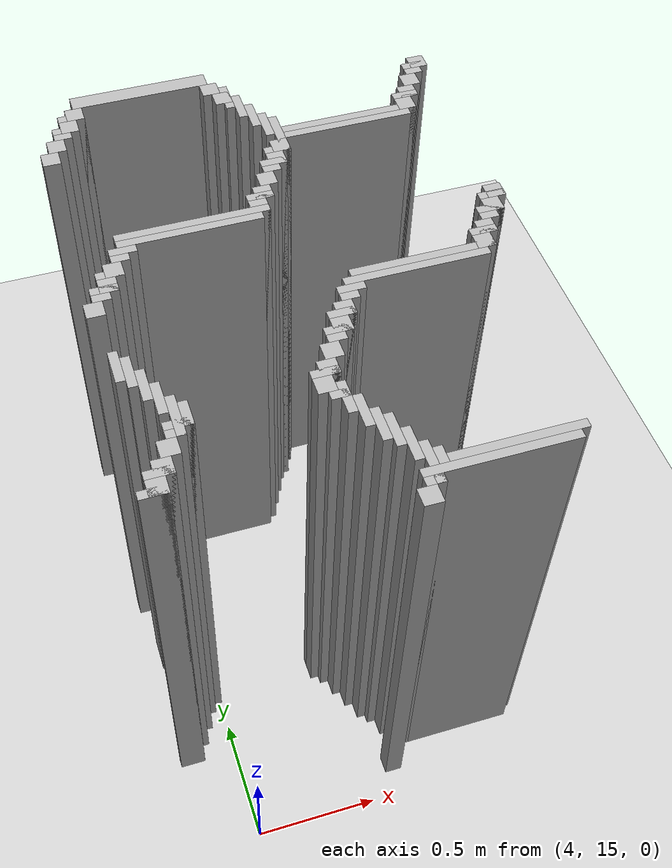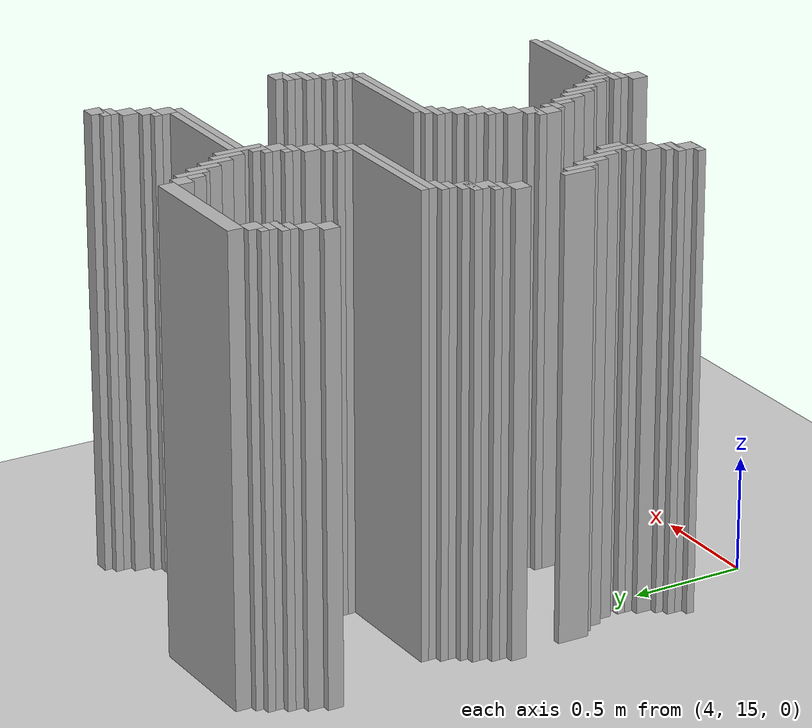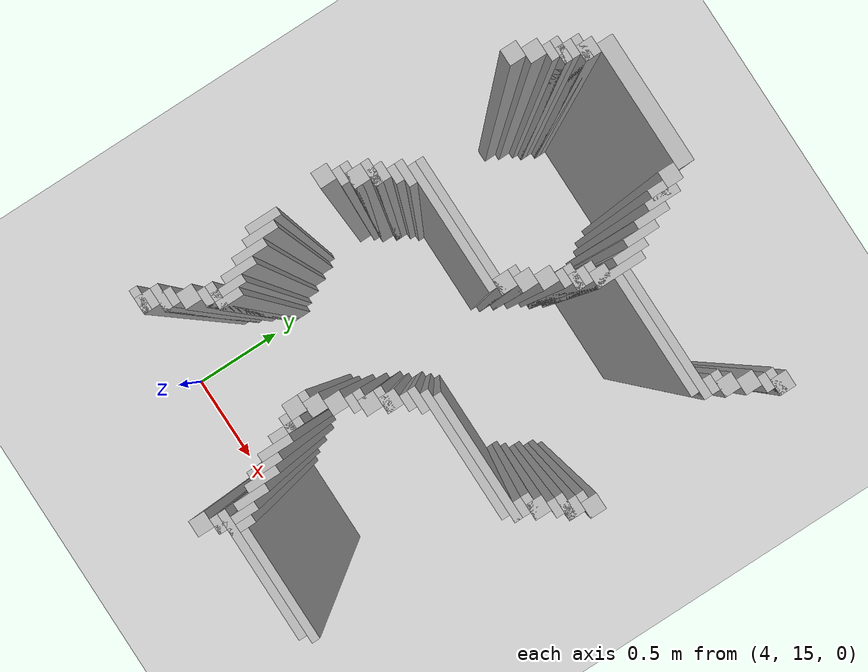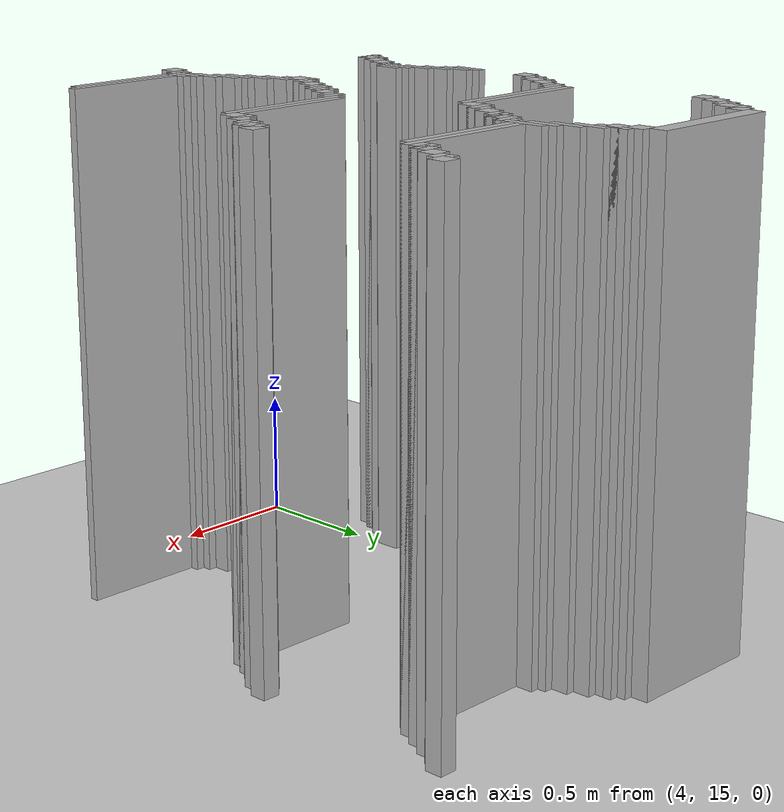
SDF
<sdf version="1.6">
 <world name="slam_world">
  <model name="ground_plane">
   <static>true</static>
   <link name="link">
    <collision name="collision">
     <geometry><plane><normal>0 0 1</normal><size>100 100</size></plane></geometry>
    </collision>
    <visual name="visual">
     <geometry><plane><normal>0 0 1</normal><size>100 100</size></plane></geometry>
     <material>
      <ambient>0.8 0.8 0.8 1</ambient>
      <diffuse>0.8 0.8 0.8 1</diffuse>
      <specular>0.8 0.8 0.8 1</specular>
     </material>
    </visual>
   </link>
  </model>
  <model name="wall_2">
   <static>true</static>
   <pose>4.211136890951276 17.366589327146173 1.0 0 0 0</pose>
   <link name="link">
    <collision name="collision">
     <geometry><box><size>0.5568445475638051 0.06960556844547564 2.0</size></box></geometry>
    </collision>
    <visual name="visual">
     <geometry><box><size>0.5568445475638051 0.06960556844547564 2.0</size></box></geometry>
     <material><ambient>0.5 0.5 0.5 1</ambient><diffuse>0.7 0.7 0.7 1</diffuse></material>
    </visual>
   </link>
  </model>
  <model name="wall_15">
   <static>true</static>
   <pose>3.932714617169373 17.296983758700694 1.0 0 0 0</pose>
   <link name="link">
    <collision name="collision">
     <geometry><box><size>0.06960556844547564 0.06960556844547564 2.0</size></box></geometry>
    </collision>
    <visual name="visual">
     <geometry><box><size>0.06960556844547564 0.06960556844547564 2.0</size></box></geometry>
     <material><ambient>0.5 0.5 0.5 1</ambient><diffuse>0.7 0.7 0.7 1</diffuse></material>
    </visual>
   </link>
  </model>
  <model name="wall_16">
   <static>true</static>
   <pose>4.489559164733178 17.296983758700694 1.0 0 0 0</pose>
   <link name="link">
    <collision name="collision">
     <geometry><box><size>0.06960556844547564 0.06960556844547564 2.0</size></box></geometry>
    </collision>
    <visual name="visual">
     <geometry><box><size>0.06960556844547564 0.06960556844547564 2.0</size></box></geometry>
     <material><ambient>0.5 0.5 0.5 1</ambient><diffuse>0.7 0.7 0.7 1</diffuse></material>
    </visual>
   </link>
  </model>
  <model name="wall_35">
   <static>true</static>
   <pose>3.9153132250580045 17.279582366589327 1.0 0 0 0</pose>
   <link name="link">
    <collision name="collision">
     <geometry><box><size>0.10440835266821345 0.03480278422273782 2.0</size></box></geometry>
    </collision>
    <visual name="visual">
     <geometry><box><size>0.10440835266821345 0.03480278422273782 2.0</size></box></geometry>
     <material><ambient>0.5 0.5 0.5 1</ambient><diffuse>0.7 0.7 0.7 1</diffuse></material>
    </visual>
   </link>
  </model>
  <model name="wall_36">
   <static>true</static>
   <pose>4.541763341067285 17.22737819025522 1.0 0 0 0</pose>
   <link name="link">
    <collision name="collision">
     <geometry><box><size>0.03480278422273782 0.13921113689095127 2.0</size></box></geometry>
    </collision>
    <visual name="visual">
     <geometry><box><size>0.03480278422273782 0.13921113689095127 2.0</size></box></geometry>
     <material><ambient>0.5 0.5 0.5 1</ambient><diffuse>0.7 0.7 0.7 1</diffuse></material>
    </visual>
   </link>
  </model>
  <model name="wall_55">
   <static>true</static>
   <pose>3.897911832946636 17.22737819025522 1.0 0 0 0</pose>
   <link name="link">
    <collision name="collision">
     <geometry><box><size>0.06960556844547564 0.06960556844547564 2.0</size></box></geometry>
    </collision>
    <visual name="visual">
     <geometry><box><size>0.06960556844547564 0.06960556844547564 2.0</size></box></geometry>
     <material><ambient>0.5 0.5 0.5 1</ambient><diffuse>0.7 0.7 0.7 1</diffuse></material>
    </visual>
   </link>
  </model>
  <model name="wall_56">
   <static>true</static>
   <pose>4.524361948955916 17.22737819025522 1.0 0 0 0</pose>
   <link name="link">
    <collision name="collision">
     <geometry><box><size>0.06960556844547564 0.06960556844547564 2.0</size></box></geometry>
    </collision>
    <visual name="visual">
     <geometry><box><size>0.06960556844547564 0.06960556844547564 2.0</size></box></geometry>
     <material><ambient>0.5 0.5 0.5 1</ambient><diffuse>0.7 0.7 0.7 1</diffuse></material>
    </visual>
   </link>
  </model>
  <model name="wall_57">
   <static>true</static>
   <pose>5.359628770301624 17.22737819025522 1.0 0 0 0</pose>
   <link name="link">
    <collision name="collision">
     <geometry><box><size>0.06960556844547564 0.06960556844547564 2.0</size></box></geometry>
    </collision>
    <visual name="visual">
     <geometry><box><size>0.06960556844547564 0.06960556844547564 2.0</size></box></geometry>
     <material><ambient>0.5 0.5 0.5 1</ambient><diffuse>0.7 0.7 0.7 1</diffuse></material>
    </visual>
   </link>
  </model>
  <model name="wall_75">
   <static>true</static>
   <pose>3.8805104408352666 17.209976798143853 1.0 0 0 0</pose>
   <link name="link">
    <collision name="collision">
     <geometry><box><size>0.10440835266821345 0.03480278422273782 2.0</size></box></geometry>
    </collision>
    <visual name="visual">
     <geometry><box><size>0.10440835266821345 0.03480278422273782 2.0</size></box></geometry>
     <material><ambient>0.5 0.5 0.5 1</ambient><diffuse>0.7 0.7 0.7 1</diffuse></material>
    </visual>
   </link>
  </model>
  <model name="wall_76">
   <static>true</static>
   <pose>4.576566125290023 17.157772621809745 1.0 0 0 0</pose>
   <link name="link">
    <collision name="collision">
     <geometry><box><size>0.03480278422273782 0.13921113689095127 2.0</size></box></geometry>
    </collision>
    <visual name="visual">
     <geometry><box><size>0.03480278422273782 0.13921113689095127 2.0</size></box></geometry>
     <material><ambient>0.5 0.5 0.5 1</ambient><diffuse>0.7 0.7 0.7 1</diffuse></material>
    </visual>
   </link>
  </model>
  <model name="wall_77">
   <static>true</static>
   <pose>5.342227378190255 17.209976798143853 1.0 0 0 0</pose>
   <link name="link">
    <collision name="collision">
     <geometry><box><size>0.10440835266821345 0.03480278422273782 2.0</size></box></geometry>
    </collision>
    <visual name="visual">
     <geometry><box><size>0.10440835266821345 0.03480278422273782 2.0</size></box></geometry>
     <material><ambient>0.5 0.5 0.5 1</ambient><diffuse>0.7 0.7 0.7 1</diffuse></material>
    </visual>
   </link>
  </model>
  <model name="wall_93">
   <static>true</static>
   <pose>3.863109048723898 17.17517401392111 1.0 0 0 0</pose>
   <link name="link">
    <collision name="collision">
     <geometry><box><size>0.06960556844547564 0.03480278422273782 2.0</size></box></geometry>
    </collision>
    <visual name="visual">
     <geometry><box><size>0.06960556844547564 0.03480278422273782 2.0</size></box></geometry>
     <material><ambient>0.5 0.5 0.5 1</ambient><diffuse>0.7 0.7 0.7 1</diffuse></material>
    </visual>
   </link>
  </model>
  <model name="wall_94">
   <static>true</static>
   <pose>5.324825986078886 17.17517401392111 1.0 0 0 0</pose>
   <link name="link">
    <collision name="collision">
     <geometry><box><size>0.06960556844547564 0.03480278422273782 2.0</size></box></geometry>
    </collision>
    <visual name="visual">
     <geometry><box><size>0.06960556844547564 0.03480278422273782 2.0</size></box></geometry>
     <material><ambient>0.5 0.5 0.5 1</ambient><diffuse>0.7 0.7 0.7 1</diffuse></material>
    </visual>
   </link>
  </model>
  <model name="wall_105">
   <static>true</static>
   <pose>3.82830626450116 17.122969837587007 1.0 0 0 0</pose>
   <link name="link">
    <collision name="collision">
     <geometry><box><size>0.06960556844547564 0.06960556844547564 2.0</size></box></geometry>
    </collision>
    <visual name="visual">
     <geometry><box><size>0.06960556844547564 0.06960556844547564 2.0</size></box></geometry>
     <material><ambient>0.5 0.5 0.5 1</ambient><diffuse>0.7 0.7 0.7 1</diffuse></material>
    </visual>
   </link>
  </model>
  <model name="wall_106">
   <static>true</static>
   <pose>4.611368909512761 17.08816705336427 1.0 0 0 0</pose>
   <link name="link">
    <collision name="collision">
     <geometry><box><size>0.03480278422273782 0.13921113689095127 2.0</size></box></geometry>
    </collision>
    <visual name="visual">
     <geometry><box><size>0.03480278422273782 0.13921113689095127 2.0</size></box></geometry>
     <material><ambient>0.5 0.5 0.5 1</ambient><diffuse>0.7 0.7 0.7 1</diffuse></material>
    </visual>
   </link>
  </model>
  <model name="wall_107">
   <static>true</static>
   <pose>5.290023201856148 17.122969837587007 1.0 0 0 0</pose>
   <link name="link">
    <collision name="collision">
     <geometry><box><size>0.06960556844547564 0.06960556844547564 2.0</size></box></geometry>
    </collision>
    <visual name="visual">
     <geometry><box><size>0.06960556844547564 0.06960556844547564 2.0</size></box></geometry>
     <material><ambient>0.5 0.5 0.5 1</ambient><diffuse>0.7 0.7 0.7 1</diffuse></material>
    </visual>
   </link>
  </model>
  <model name="wall_125">
   <static>true</static>
   <pose>3.793503480278422 17.053364269141532 1.0 0 0 0</pose>
   <link name="link">
    <collision name="collision">
     <geometry><box><size>0.06960556844547564 0.06960556844547564 2.0</size></box></geometry>
    </collision>
    <visual name="visual">
     <geometry><box><size>0.06960556844547564 0.06960556844547564 2.0</size></box></geometry>
     <material><ambient>0.5 0.5 0.5 1</ambient><diffuse>0.7 0.7 0.7 1</diffuse></material>
    </visual>
   </link>
  </model>
  <model name="wall_126">
   <static>true</static>
   <pose>4.646171693735498 17.01856148491879 1.0 0 0 0</pose>
   <link name="link">
    <collision name="collision">
     <geometry><box><size>0.03480278422273782 0.13921113689095127 2.0</size></box></geometry>
    </collision>
    <visual name="visual">
     <geometry><box><size>0.03480278422273782 0.13921113689095127 2.0</size></box></geometry>
     <material><ambient>0.5 0.5 0.5 1</ambient><diffuse>0.7 0.7 0.7 1</diffuse></material>
    </visual>
   </link>
  </model>
  <model name="wall_127">
   <static>true</static>
   <pose>5.25522041763341 17.053364269141532 1.0 0 0 0</pose>
   <link name="link">
    <collision name="collision">
     <geometry><box><size>0.06960556844547564 0.06960556844547564 2.0</size></box></geometry>
    </collision>
    <visual name="visual">
     <geometry><box><size>0.06960556844547564 0.06960556844547564 2.0</size></box></geometry>
     <material><ambient>0.5 0.5 0.5 1</ambient><diffuse>0.7 0.7 0.7 1</diffuse></material>
    </visual>
   </link>
  </model>
  <model name="wall_146">
   <static>true</static>
   <pose>4.6809744779582365 16.948955916473317 1.0 0 0 0</pose>
   <link name="link">
    <collision name="collision">
     <geometry><box><size>0.03480278422273782 0.2088167053364269 2.0</size></box></geometry>
    </collision>
    <visual name="visual">
     <geometry><box><size>0.03480278422273782 0.2088167053364269 2.0</size></box></geometry>
     <material><ambient>0.5 0.5 0.5 1</ambient><diffuse>0.7 0.7 0.7 1</diffuse></material>
    </visual>
   </link>
  </model>
  <model name="wall_147">
   <static>true</static>
   <pose>5.237819025522041 17.035962877030162 1.0 0 0 0</pose>
   <link name="link">
    <collision name="collision">
     <geometry><box><size>0.10440835266821345 0.03480278422273782 2.0</size></box></geometry>
    </collision>
    <visual name="visual">
     <geometry><box><size>0.10440835266821345 0.03480278422273782 2.0</size></box></geometry>
     <material><ambient>0.5 0.5 0.5 1</ambient><diffuse>0.7 0.7 0.7 1</diffuse></material>
    </visual>
   </link>
  </model>
  <model name="wall_164">
   <static>true</static>
   <pose>5.220417633410673 16.983758700696054 1.0 0 0 0</pose>
   <link name="link">
    <collision name="collision">
     <geometry><box><size>0.06960556844547564 0.06960556844547564 2.0</size></box></geometry>
    </collision>
    <visual name="visual">
     <geometry><box><size>0.06960556844547564 0.06960556844547564 2.0</size></box></geometry>
     <material><ambient>0.5 0.5 0.5 1</ambient><diffuse>0.7 0.7 0.7 1</diffuse></material>
    </visual>
   </link>
  </model>
  <model name="wall_174">
   <static>true</static>
   <pose>4.976798143851508 16.966357308584687 1.0 0 0 0</pose>
   <link name="link">
    <collision name="collision">
     <geometry><box><size>0.5568445475638051 0.03480278422273782 2.0</size></box></geometry>
    </collision>
    <visual name="visual">
     <geometry><box><size>0.5568445475638051 0.03480278422273782 2.0</size></box></geometry>
     <material><ambient>0.5 0.5 0.5 1</ambient><diffuse>0.7 0.7 0.7 1</diffuse></material>
    </visual>
   </link>
  </model>
  <model name="wall_185">
   <static>true</static>
   <pose>4.959396751740139 16.93155452436195 1.0 0 0 0</pose>
   <link name="link">
    <collision name="collision">
     <geometry><box><size>0.5220417633410672 0.03480278422273782 2.0</size></box></geometry>
    </collision>
    <visual name="visual">
     <geometry><box><size>0.5220417633410672 0.03480278422273782 2.0</size></box></geometry>
     <material><ambient>0.5 0.5 0.5 1</ambient><diffuse>0.7 0.7 0.7 1</diffuse></material>
    </visual>
   </link>
  </model>
  <model name="wall_195">
   <static>true</static>
   <pose>4.663573085846868 16.87935034802784 1.0 0 0 0</pose>
   <link name="link">
    <collision name="collision">
     <geometry><box><size>0.06960556844547564 0.06960556844547564 2.0</size></box></geometry>
    </collision>
    <visual name="visual">
     <geometry><box><size>0.06960556844547564 0.06960556844547564 2.0</size></box></geometry>
     <material><ambient>0.5 0.5 0.5 1</ambient><diffuse>0.7 0.7 0.7 1</diffuse></material>
    </visual>
   </link>
  </model>
  <model name="wall_204">
   <static>true</static>
   <pose>4.646171693735498 16.86194895591647 1.0 0 0 0</pose>
   <link name="link">
    <collision name="collision">
     <geometry><box><size>0.10440835266821345 0.03480278422273782 2.0</size></box></geometry>
    </collision>
    <visual name="visual">
     <geometry><box><size>0.10440835266821345 0.03480278422273782 2.0</size></box></geometry>
     <material><ambient>0.5 0.5 0.5 1</ambient><diffuse>0.7 0.7 0.7 1</diffuse></material>
    </visual>
   </link>
  </model>
  <model name="wall_213">
   <static>true</static>
   <pose>4.6287703016241295 16.809744779582367 1.0 0 0 0</pose>
   <link name="link">
    <collision name="collision">
     <geometry><box><size>0.06960556844547564 0.06960556844547564 2.0</size></box></geometry>
    </collision>
    <visual name="visual">
     <geometry><box><size>0.06960556844547564 0.06960556844547564 2.0</size></box></geometry>
     <material><ambient>0.5 0.5 0.5 1</ambient><diffuse>0.7 0.7 0.7 1</diffuse></material>
    </visual>
   </link>
  </model>
  <model name="wall_222">
   <static>true</static>
   <pose>4.611368909512761 16.792343387470996 1.0 0 0 0</pose>
   <link name="link">
    <collision name="collision">
     <geometry><box><size>0.10440835266821345 0.03480278422273782 2.0</size></box></geometry>
    </collision>
    <visual name="visual">
     <geometry><box><size>0.10440835266821345 0.03480278422273782 2.0</size></box></geometry>
     <material><ambient>0.5 0.5 0.5 1</ambient><diffuse>0.7 0.7 0.7 1</diffuse></material>
    </visual>
   </link>
  </model>
  <model name="wall_230">
   <static>true</static>
   <pose>4.593967517401392 16.75754060324826 1.0 0 0 0</pose>
   <link name="link">
    <collision name="collision">
     <geometry><box><size>0.06960556844547564 0.03480278422273782 2.0</size></box></geometry>
    </collision>
    <visual name="visual">
     <geometry><box><size>0.06960556844547564 0.03480278422273782 2.0</size></box></geometry>
     <material><ambient>0.5 0.5 0.5 1</ambient><diffuse>0.7 0.7 0.7 1</diffuse></material>
    </visual>
   </link>
  </model>
  <model name="wall_235">
   <static>true</static>
   <pose>4.559164733178654 16.70533642691415 1.0 0 0 0</pose>
   <link name="link">
    <collision name="collision">
     <geometry><box><size>0.06960556844547564 0.06960556844547564 2.0</size></box></geometry>
    </collision>
    <visual name="visual">
     <geometry><box><size>0.06960556844547564 0.06960556844547564 2.0</size></box></geometry>
     <material><ambient>0.5 0.5 0.5 1</ambient><diffuse>0.7 0.7 0.7 1</diffuse></material>
    </visual>
   </link>
  </model>
  <model name="wall_244">
   <static>true</static>
   <pose>4.524361948955916 16.635730858468676 1.0 0 0 0</pose>
   <link name="link">
    <collision name="collision">
     <geometry><box><size>0.06960556844547564 0.06960556844547564 2.0</size></box></geometry>
    </collision>
    <visual name="visual">
     <geometry><box><size>0.06960556844547564 0.06960556844547564 2.0</size></box></geometry>
     <material><ambient>0.5 0.5 0.5 1</ambient><diffuse>0.7 0.7 0.7 1</diffuse></material>
    </visual>
   </link>
  </model>
  <model name="wall_253">
   <static>true</static>
   <pose>4.506960556844548 16.61832946635731 1.0 0 0 0</pose>
   <link name="link">
    <collision name="collision">
     <geometry><box><size>0.10440835266821345 0.03480278422273782 2.0</size></box></geometry>
    </collision>
    <visual name="visual">
     <geometry><box><size>0.10440835266821345 0.03480278422273782 2.0</size></box></geometry>
     <material><ambient>0.5 0.5 0.5 1</ambient><diffuse>0.7 0.7 0.7 1</diffuse></material>
    </visual>
   </link>
  </model>
  <model name="wall_261">
   <static>true</static>
   <pose>4.489559164733178 16.5661252900232 1.0 0 0 0</pose>
   <link name="link">
    <collision name="collision">
     <geometry><box><size>0.06960556844547564 0.06960556844547564 2.0</size></box></geometry>
    </collision>
    <visual name="visual">
     <geometry><box><size>0.06960556844547564 0.06960556844547564 2.0</size></box></geometry>
     <material><ambient>0.5 0.5 0.5 1</ambient><diffuse>0.7 0.7 0.7 1</diffuse></material>
    </visual>
   </link>
  </model>
  <model name="wall_267">
   <static>true</static>
   <pose>4.228538283062645 16.54872389791183 1.0 0 0 0</pose>
   <link name="link">
    <collision name="collision">
     <geometry><box><size>0.5916473317865429 0.03480278422273782 2.0</size></box></geometry>
    </collision>
    <visual name="visual">
     <geometry><box><size>0.5916473317865429 0.03480278422273782 2.0</size></box></geometry>
     <material><ambient>0.5 0.5 0.5 1</ambient><diffuse>0.7 0.7 0.7 1</diffuse></material>
    </visual>
   </link>
  </model>
  <model name="wall_278">
   <static>true</static>
   <pose>4.211136890951276 16.513921113689094 1.0 0 0 0</pose>
   <link name="link">
    <collision name="collision">
     <geometry><box><size>0.5568445475638051 0.03480278422273782 2.0</size></box></geometry>
    </collision>
    <visual name="visual">
     <geometry><box><size>0.5568445475638051 0.03480278422273782 2.0</size></box></geometry>
     <material><ambient>0.5 0.5 0.5 1</ambient><diffuse>0.7 0.7 0.7 1</diffuse></material>
    </visual>
   </link>
  </model>
  <model name="wall_284">
   <static>true</static>
   <pose>3.9501160092807424 16.479118329466356 1.0 0 0 0</pose>
   <link name="link">
    <collision name="collision">
     <geometry><box><size>0.10440835266821345 0.03480278422273782 2.0</size></box></geometry>
    </collision>
    <visual name="visual">
     <geometry><box><size>0.10440835266821345 0.03480278422273782 2.0</size></box></geometry>
     <material><ambient>0.5 0.5 0.5 1</ambient><diffuse>0.7 0.7 0.7 1</diffuse></material>
    </visual>
   </link>
  </model>
  <model name="wall_295">
   <static>true</static>
   <pose>3.932714617169373 16.44431554524362 1.0 0 0 0</pose>
   <link name="link">
    <collision name="collision">
     <geometry><box><size>0.06960556844547564 0.03480278422273782 2.0</size></box></geometry>
    </collision>
    <visual name="visual">
     <geometry><box><size>0.06960556844547564 0.03480278422273782 2.0</size></box></geometry>
     <material><ambient>0.5 0.5 0.5 1</ambient><diffuse>0.7 0.7 0.7 1</diffuse></material>
    </visual>
   </link>
  </model>
  <model name="wall_307">
   <static>true</static>
   <pose>3.897911832946636 16.39211136890951 1.0 0 0 0</pose>
   <link name="link">
    <collision name="collision">
     <geometry><box><size>0.06960556844547564 0.06960556844547564 2.0</size></box></geometry>
    </collision>
    <visual name="visual">
     <geometry><box><size>0.06960556844547564 0.06960556844547564 2.0</size></box></geometry>
     <material><ambient>0.5 0.5 0.5 1</ambient><diffuse>0.7 0.7 0.7 1</diffuse></material>
    </visual>
   </link>
  </model>
  <model name="wall_308">
   <static>true</static>
   <pose>5.359628770301624 16.39211136890951 1.0 0 0 0</pose>
   <link name="link">
    <collision name="collision">
     <geometry><box><size>0.06960556844547564 0.06960556844547564 2.0</size></box></geometry>
    </collision>
    <visual name="visual">
     <geometry><box><size>0.06960556844547564 0.06960556844547564 2.0</size></box></geometry>
     <material><ambient>0.5 0.5 0.5 1</ambient><diffuse>0.7 0.7 0.7 1</diffuse></material>
    </visual>
   </link>
  </model>
  <model name="wall_321">
   <static>true</static>
   <pose>3.8805104408352666 16.374709976798144 1.0 0 0 0</pose>
   <link name="link">
    <collision name="collision">
     <geometry><box><size>0.10440835266821345 0.03480278422273782 2.0</size></box></geometry>
    </collision>
    <visual name="visual">
     <geometry><box><size>0.10440835266821345 0.03480278422273782 2.0</size></box></geometry>
     <material><ambient>0.5 0.5 0.5 1</ambient><diffuse>0.7 0.7 0.7 1</diffuse></material>
    </visual>
   </link>
  </model>
  <model name="wall_322">
   <static>true</static>
   <pose>5.342227378190255 16.374709976798144 1.0 0 0 0</pose>
   <link name="link">
    <collision name="collision">
     <geometry><box><size>0.10440835266821345 0.03480278422273782 2.0</size></box></geometry>
    </collision>
    <visual name="visual">
     <geometry><box><size>0.10440835266821345 0.03480278422273782 2.0</size></box></geometry>
     <material><ambient>0.5 0.5 0.5 1</ambient><diffuse>0.7 0.7 0.7 1</diffuse></material>
    </visual>
   </link>
  </model>
  <model name="wall_335">
   <static>true</static>
   <pose>3.863109048723898 16.322505800464036 1.0 0 0 0</pose>
   <link name="link">
    <collision name="collision">
     <geometry><box><size>0.06960556844547564 0.06960556844547564 2.0</size></box></geometry>
    </collision>
    <visual name="visual">
     <geometry><box><size>0.06960556844547564 0.06960556844547564 2.0</size></box></geometry>
     <material><ambient>0.5 0.5 0.5 1</ambient><diffuse>0.7 0.7 0.7 1</diffuse></material>
    </visual>
   </link>
  </model>
  <model name="wall_336">
   <static>true</static>
   <pose>5.324825986078886 16.322505800464036 1.0 0 0 0</pose>
   <link name="link">
    <collision name="collision">
     <geometry><box><size>0.06960556844547564 0.06960556844547564 2.0</size></box></geometry>
    </collision>
    <visual name="visual">
     <geometry><box><size>0.06960556844547564 0.06960556844547564 2.0</size></box></geometry>
     <material><ambient>0.5 0.5 0.5 1</ambient><diffuse>0.7 0.7 0.7 1</diffuse></material>
    </visual>
   </link>
  </model>
  <model name="wall_349">
   <static>true</static>
   <pose>3.845707656612529 16.30510440835267 1.0 0 0 0</pose>
   <link name="link">
    <collision name="collision">
     <geometry><box><size>0.10440835266821345 0.03480278422273782 2.0</size></box></geometry>
    </collision>
    <visual name="visual">
     <geometry><box><size>0.10440835266821345 0.03480278422273782 2.0</size></box></geometry>
     <material><ambient>0.5 0.5 0.5 1</ambient><diffuse>0.7 0.7 0.7 1</diffuse></material>
    </visual>
   </link>
  </model>
  <model name="wall_350">
   <static>true</static>
   <pose>5.307424593967517 16.30510440835267 1.0 0 0 0</pose>
   <link name="link">
    <collision name="collision">
     <geometry><box><size>0.10440835266821345 0.03480278422273782 2.0</size></box></geometry>
    </collision>
    <visual name="visual">
     <geometry><box><size>0.10440835266821345 0.03480278422273782 2.0</size></box></geometry>
     <material><ambient>0.5 0.5 0.5 1</ambient><diffuse>0.7 0.7 0.7 1</diffuse></material>
    </visual>
   </link>
  </model>
  <model name="wall_361">
   <static>true</static>
   <pose>3.82830626450116 16.270301624129928 1.0 0 0 0</pose>
   <link name="link">
    <collision name="collision">
     <geometry><box><size>0.06960556844547564 0.03480278422273782 2.0</size></box></geometry>
    </collision>
    <visual name="visual">
     <geometry><box><size>0.06960556844547564 0.03480278422273782 2.0</size></box></geometry>
     <material><ambient>0.5 0.5 0.5 1</ambient><diffuse>0.7 0.7 0.7 1</diffuse></material>
    </visual>
   </link>
  </model>
  <model name="wall_362">
   <static>true</static>
   <pose>5.290023201856148 16.270301624129928 1.0 0 0 0</pose>
   <link name="link">
    <collision name="collision">
     <geometry><box><size>0.06960556844547564 0.03480278422273782 2.0</size></box></geometry>
    </collision>
    <visual name="visual">
     <geometry><box><size>0.06960556844547564 0.03480278422273782 2.0</size></box></geometry>
     <material><ambient>0.5 0.5 0.5 1</ambient><diffuse>0.7 0.7 0.7 1</diffuse></material>
    </visual>
   </link>
  </model>
  <model name="wall_371">
   <static>true</static>
   <pose>3.793503480278422 16.218097447795824 1.0 0 0 0</pose>
   <link name="link">
    <collision name="collision">
     <geometry><box><size>0.06960556844547564 0.06960556844547564 2.0</size></box></geometry>
    </collision>
    <visual name="visual">
     <geometry><box><size>0.06960556844547564 0.06960556844547564 2.0</size></box></geometry>
     <material><ambient>0.5 0.5 0.5 1</ambient><diffuse>0.7 0.7 0.7 1</diffuse></material>
    </visual>
   </link>
  </model>
  <model name="wall_372">
   <static>true</static>
   <pose>5.25522041763341 16.218097447795824 1.0 0 0 0</pose>
   <link name="link">
    <collision name="collision">
     <geometry><box><size>0.06960556844547564 0.06960556844547564 2.0</size></box></geometry>
    </collision>
    <visual name="visual">
     <geometry><box><size>0.06960556844547564 0.06960556844547564 2.0</size></box></geometry>
     <material><ambient>0.5 0.5 0.5 1</ambient><diffuse>0.7 0.7 0.7 1</diffuse></material>
    </visual>
   </link>
  </model>
  <model name="wall_384">
   <static>true</static>
   <pose>5.237819025522041 16.200696055684453 1.0 0 0 0</pose>
   <link name="link">
    <collision name="collision">
     <geometry><box><size>0.10440835266821345 0.03480278422273782 2.0</size></box></geometry>
    </collision>
    <visual name="visual">
     <geometry><box><size>0.10440835266821345 0.03480278422273782 2.0</size></box></geometry>
     <material><ambient>0.5 0.5 0.5 1</ambient><diffuse>0.7 0.7 0.7 1</diffuse></material>
    </visual>
   </link>
  </model>
  <model name="wall_394">
   <static>true</static>
   <pose>5.220417633410673 16.14849187935035 1.0 0 0 0</pose>
   <link name="link">
    <collision name="collision">
     <geometry><box><size>0.06960556844547564 0.06960556844547564 2.0</size></box></geometry>
    </collision>
    <visual name="visual">
     <geometry><box><size>0.06960556844547564 0.06960556844547564 2.0</size></box></geometry>
     <material><ambient>0.5 0.5 0.5 1</ambient><diffuse>0.7 0.7 0.7 1</diffuse></material>
    </visual>
   </link>
  </model>
  <model name="wall_408">
   <static>true</static>
   <pose>4.976798143851508 16.13109048723898 1.0 0 0 0</pose>
   <link name="link">
    <collision name="collision">
     <geometry><box><size>0.5568445475638051 0.03480278422273782 2.0</size></box></geometry>
    </collision>
    <visual name="visual">
     <geometry><box><size>0.5568445475638051 0.03480278422273782 2.0</size></box></geometry>
     <material><ambient>0.5 0.5 0.5 1</ambient><diffuse>0.7 0.7 0.7 1</diffuse></material>
    </visual>
   </link>
  </model>
  <model name="wall_420">
   <static>true</static>
   <pose>4.94199535962877 16.09628770301624 1.0 0 0 0</pose>
   <link name="link">
    <collision name="collision">
     <geometry><box><size>0.5568445475638051 0.03480278422273782 2.0</size></box></geometry>
    </collision>
    <visual name="visual">
     <geometry><box><size>0.5568445475638051 0.03480278422273782 2.0</size></box></geometry>
     <material><ambient>0.5 0.5 0.5 1</ambient><diffuse>0.7 0.7 0.7 1</diffuse></material>
    </visual>
   </link>
  </model>
  <model name="wall_433">
   <static>true</static>
   <pose>4.6809744779582365 16.061484918793504 1.0 0 0 0</pose>
   <link name="link">
    <collision name="collision">
     <geometry><box><size>0.10440835266821345 0.03480278422273782 2.0</size></box></geometry>
    </collision>
    <visual name="visual">
     <geometry><box><size>0.10440835266821345 0.03480278422273782 2.0</size></box></geometry>
     <material><ambient>0.5 0.5 0.5 1</ambient><diffuse>0.7 0.7 0.7 1</diffuse></material>
    </visual>
   </link>
  </model>
  <model name="wall_447">
   <static>true</static>
   <pose>4.663573085846868 16.026682134570766 1.0 0 0 0</pose>
   <link name="link">
    <collision name="collision">
     <geometry><box><size>0.06960556844547564 0.03480278422273782 2.0</size></box></geometry>
    </collision>
    <visual name="visual">
     <geometry><box><size>0.06960556844547564 0.03480278422273782 2.0</size></box></geometry>
     <material><ambient>0.5 0.5 0.5 1</ambient><diffuse>0.7 0.7 0.7 1</diffuse></material>
    </visual>
   </link>
  </model>
  <model name="wall_460">
   <static>true</static>
   <pose>3.810904872389791 15.93967517401392 1.0 0 0 0</pose>
   <link name="link">
    <collision name="collision">
     <geometry><box><size>0.03480278422273782 0.13921113689095127 2.0</size></box></geometry>
    </collision>
    <visual name="visual">
     <geometry><box><size>0.03480278422273782 0.13921113689095127 2.0</size></box></geometry>
     <material><ambient>0.5 0.5 0.5 1</ambient><diffuse>0.7 0.7 0.7 1</diffuse></material>
    </visual>
   </link>
  </model>
  <model name="wall_461">
   <static>true</static>
   <pose>4.6287703016241295 15.974477958236658 1.0 0 0 0</pose>
   <link name="link">
    <collision name="collision">
     <geometry><box><size>0.06960556844547564 0.06960556844547564 2.0</size></box></geometry>
    </collision>
    <visual name="visual">
     <geometry><box><size>0.06960556844547564 0.06960556844547564 2.0</size></box></geometry>
     <material><ambient>0.5 0.5 0.5 1</ambient><diffuse>0.7 0.7 0.7 1</diffuse></material>
    </visual>
   </link>
  </model>
  <model name="wall_474">
   <static>true</static>
   <pose>3.845707656612529 15.904872389791183 1.0 0 0 0</pose>
   <link name="link">
    <collision name="collision">
     <geometry><box><size>0.03480278422273782 0.13921113689095127 2.0</size></box></geometry>
    </collision>
    <visual name="visual">
     <geometry><box><size>0.03480278422273782 0.13921113689095127 2.0</size></box></geometry>
     <material><ambient>0.5 0.5 0.5 1</ambient><diffuse>0.7 0.7 0.7 1</diffuse></material>
    </visual>
   </link>
  </model>
  <model name="wall_475">
   <static>true</static>
   <pose>4.611368909512761 15.95707656612529 1.0 0 0 0</pose>
   <link name="link">
    <collision name="collision">
     <geometry><box><size>0.10440835266821345 0.03480278422273782 2.0</size></box></geometry>
    </collision>
    <visual name="visual">
     <geometry><box><size>0.10440835266821345 0.03480278422273782 2.0</size></box></geometry>
     <material><ambient>0.5 0.5 0.5 1</ambient><diffuse>0.7 0.7 0.7 1</diffuse></material>
    </visual>
   </link>
  </model>
  <model name="wall_487">
   <static>true</static>
   <pose>4.593967517401392 15.904872389791183 1.0 0 0 0</pose>
   <link name="link">
    <collision name="collision">
     <geometry><box><size>0.06960556844547564 0.06960556844547564 2.0</size></box></geometry>
    </collision>
    <visual name="visual">
     <geometry><box><size>0.06960556844547564 0.06960556844547564 2.0</size></box></geometry>
     <material><ambient>0.5 0.5 0.5 1</ambient><diffuse>0.7 0.7 0.7 1</diffuse></material>
    </visual>
   </link>
  </model>
  <model name="wall_498">
   <static>true</static>
   <pose>3.8805104408352666 15.835266821345707 1.0 0 0 0</pose>
   <link name="link">
    <collision name="collision">
     <geometry><box><size>0.03480278422273782 0.13921113689095127 2.0</size></box></geometry>
    </collision>
    <visual name="visual">
     <geometry><box><size>0.03480278422273782 0.13921113689095127 2.0</size></box></geometry>
     <material><ambient>0.5 0.5 0.5 1</ambient><diffuse>0.7 0.7 0.7 1</diffuse></material>
    </visual>
   </link>
  </model>
  <model name="wall_499">
   <static>true</static>
   <pose>4.576566125290023 15.887470997679813 1.0 0 0 0</pose>
   <link name="link">
    <collision name="collision">
     <geometry><box><size>0.10440835266821345 0.03480278422273782 2.0</size></box></geometry>
    </collision>
    <visual name="visual">
     <geometry><box><size>0.10440835266821345 0.03480278422273782 2.0</size></box></geometry>
     <material><ambient>0.5 0.5 0.5 1</ambient><diffuse>0.7 0.7 0.7 1</diffuse></material>
    </visual>
   </link>
  </model>
  <model name="wall_511">
   <static>true</static>
   <pose>4.559164733178654 15.852668213457076 1.0 0 0 0</pose>
   <link name="link">
    <collision name="collision">
     <geometry><box><size>0.06960556844547564 0.03480278422273782 2.0</size></box></geometry>
    </collision>
    <visual name="visual">
     <geometry><box><size>0.06960556844547564 0.03480278422273782 2.0</size></box></geometry>
     <material><ambient>0.5 0.5 0.5 1</ambient><diffuse>0.7 0.7 0.7 1</diffuse></material>
    </visual>
   </link>
  </model>
  <model name="wall_520">
   <static>true</static>
   <pose>3.9153132250580045 15.765661252900232 1.0 0 0 0</pose>
   <link name="link">
    <collision name="collision">
     <geometry><box><size>0.03480278422273782 0.13921113689095127 2.0</size></box></geometry>
    </collision>
    <visual name="visual">
     <geometry><box><size>0.03480278422273782 0.13921113689095127 2.0</size></box></geometry>
     <material><ambient>0.5 0.5 0.5 1</ambient><diffuse>0.7 0.7 0.7 1</diffuse></material>
    </visual>
   </link>
  </model>
  <model name="wall_521">
   <static>true</static>
   <pose>4.524361948955916 15.80046403712297 1.0 0 0 0</pose>
   <link name="link">
    <collision name="collision">
     <geometry><box><size>0.06960556844547564 0.06960556844547564 2.0</size></box></geometry>
    </collision>
    <visual name="visual">
     <geometry><box><size>0.06960556844547564 0.06960556844547564 2.0</size></box></geometry>
     <material><ambient>0.5 0.5 0.5 1</ambient><diffuse>0.7 0.7 0.7 1</diffuse></material>
    </visual>
   </link>
  </model>
  <model name="wall_534">
   <static>true</static>
   <pose>3.9501160092807424 15.678654292343387 1.0 0 0 0</pose>
   <link name="link">
    <collision name="collision">
     <geometry><box><size>0.03480278422273782 0.17401392111368907 2.0</size></box></geometry>
    </collision>
    <visual name="visual">
     <geometry><box><size>0.03480278422273782 0.17401392111368907 2.0</size></box></geometry>
     <material><ambient>0.5 0.5 0.5 1</ambient><diffuse>0.7 0.7 0.7 1</diffuse></material>
    </visual>
   </link>
  </model>
  <model name="wall_535">
   <static>true</static>
   <pose>4.489559164733178 15.730858468677493 1.0 0 0 0</pose>
   <link name="link">
    <collision name="collision">
     <geometry><box><size>0.06960556844547564 0.06960556844547564 2.0</size></box></geometry>
    </collision>
    <visual name="visual">
     <geometry><box><size>0.06960556844547564 0.06960556844547564 2.0</size></box></geometry>
     <material><ambient>0.5 0.5 0.5 1</ambient><diffuse>0.7 0.7 0.7 1</diffuse></material>
    </visual>
   </link>
  </model>
  <model name="wall_547">
   <static>true</static>
   <pose>3.98491879350348 15.678654292343387 1.0 0 0 0</pose>
   <link name="link">
    <collision name="collision">
     <geometry><box><size>0.03480278422273782 0.10440835266821345 2.0</size></box></geometry>
    </collision>
    <visual name="visual">
     <geometry><box><size>0.03480278422273782 0.10440835266821345 2.0</size></box></geometry>
     <material><ambient>0.5 0.5 0.5 1</ambient><diffuse>0.7 0.7 0.7 1</diffuse></material>
    </visual>
   </link>
  </model>
  <model name="wall_548">
   <static>true</static>
   <pose>4.472157772621809 15.713457076566124 1.0 0 0 0</pose>
   <link name="link">
    <collision name="collision">
     <geometry><box><size>0.10440835266821345 0.03480278422273782 2.0</size></box></geometry>
    </collision>
    <visual name="visual">
     <geometry><box><size>0.10440835266821345 0.03480278422273782 2.0</size></box></geometry>
     <material><ambient>0.5 0.5 0.5 1</ambient><diffuse>0.7 0.7 0.7 1</diffuse></material>
    </visual>
   </link>
  </model>
  <model name="wall_560">
   <static>true</static>
   <pose>4.454756380510441 15.661252900232018 1.0 0 0 0</pose>
   <link name="link">
    <collision name="collision">
     <geometry><box><size>0.06960556844547564 0.06960556844547564 2.0</size></box></geometry>
    </collision>
    <visual name="visual">
     <geometry><box><size>0.06960556844547564 0.06960556844547564 2.0</size></box></geometry>
     <material><ambient>0.5 0.5 0.5 1</ambient><diffuse>0.7 0.7 0.7 1</diffuse></material>
    </visual>
   </link>
  </model>
  <model name="wall_574">
   <static>true</static>
   <pose>3.9501160092807424 15.64385150812065 1.0 0 0 0</pose>
   <link name="link">
    <collision name="collision">
     <geometry><box><size>0.10440835266821345 0.03480278422273782 2.0</size></box></geometry>
    </collision>
    <visual name="visual">
     <geometry><box><size>0.10440835266821345 0.03480278422273782 2.0</size></box></geometry>
     <material><ambient>0.5 0.5 0.5 1</ambient><diffuse>0.7 0.7 0.7 1</diffuse></material>
    </visual>
   </link>
  </model>
  <model name="wall_575">
   <static>true</static>
   <pose>4.506960556844548 15.591647331786543 1.0 0 0 0</pose>
   <link name="link">
    <collision name="collision">
     <geometry><box><size>0.03480278422273782 0.13921113689095127 2.0</size></box></geometry>
    </collision>
    <visual name="visual">
     <geometry><box><size>0.03480278422273782 0.13921113689095127 2.0</size></box></geometry>
     <material><ambient>0.5 0.5 0.5 1</ambient><diffuse>0.7 0.7 0.7 1</diffuse></material>
    </visual>
   </link>
  </model>
  <model name="wall_594">
   <static>true</static>
   <pose>3.932714617169373 15.609048723897912 1.0 0 0 0</pose>
   <link name="link">
    <collision name="collision">
     <geometry><box><size>0.06960556844547564 0.03480278422273782 2.0</size></box></geometry>
    </collision>
    <visual name="visual">
     <geometry><box><size>0.06960556844547564 0.03480278422273782 2.0</size></box></geometry>
     <material><ambient>0.5 0.5 0.5 1</ambient><diffuse>0.7 0.7 0.7 1</diffuse></material>
    </visual>
   </link>
  </model>
  <model name="wall_595">
   <static>true</static>
   <pose>4.489559164733178 15.609048723897912 1.0 0 0 0</pose>
   <link name="link">
    <collision name="collision">
     <geometry><box><size>0.06960556844547564 0.03480278422273782 2.0</size></box></geometry>
    </collision>
    <visual name="visual">
     <geometry><box><size>0.06960556844547564 0.03480278422273782 2.0</size></box></geometry>
     <material><ambient>0.5 0.5 0.5 1</ambient><diffuse>0.7 0.7 0.7 1</diffuse></material>
    </visual>
   </link>
  </model>
  <model name="wall_611">
   <static>true</static>
   <pose>3.897911832946636 15.556844547563804 1.0 0 0 0</pose>
   <link name="link">
    <collision name="collision">
     <geometry><box><size>0.06960556844547564 0.06960556844547564 2.0</size></box></geometry>
    </collision>
    <visual name="visual">
     <geometry><box><size>0.06960556844547564 0.06960556844547564 2.0</size></box></geometry>
     <material><ambient>0.5 0.5 0.5 1</ambient><diffuse>0.7 0.7 0.7 1</diffuse></material>
    </visual>
   </link>
  </model>
  <model name="wall_612">
   <static>true</static>
   <pose>4.541763341067285 15.522041763341067 1.0 0 0 0</pose>
   <link name="link">
    <collision name="collision">
     <geometry><box><size>0.03480278422273782 0.13921113689095127 2.0</size></box></geometry>
    </collision>
    <visual name="visual">
     <geometry><box><size>0.03480278422273782 0.13921113689095127 2.0</size></box></geometry>
     <material><ambient>0.5 0.5 0.5 1</ambient><diffuse>0.7 0.7 0.7 1</diffuse></material>
    </visual>
   </link>
  </model>
  <model name="wall_628">
   <static>true</static>
   <pose>3.863109048723898 15.48723897911833 1.0 0 0 0</pose>
   <link name="link">
    <collision name="collision">
     <geometry><box><size>0.06960556844547564 0.06960556844547564 2.0</size></box></geometry>
    </collision>
    <visual name="visual">
     <geometry><box><size>0.06960556844547564 0.06960556844547564 2.0</size></box></geometry>
     <material><ambient>0.5 0.5 0.5 1</ambient><diffuse>0.7 0.7 0.7 1</diffuse></material>
    </visual>
   </link>
  </model>
  <model name="wall_629">
   <static>true</static>
   <pose>4.576566125290023 15.452436194895592 1.0 0 0 0</pose>
   <link name="link">
    <collision name="collision">
     <geometry><box><size>0.03480278422273782 0.13921113689095127 2.0</size></box></geometry>
    </collision>
    <visual name="visual">
     <geometry><box><size>0.03480278422273782 0.13921113689095127 2.0</size></box></geometry>
     <material><ambient>0.5 0.5 0.5 1</ambient><diffuse>0.7 0.7 0.7 1</diffuse></material>
    </visual>
   </link>
  </model>
  <model name="wall_645">
   <static>true</static>
   <pose>3.845707656612529 15.46983758700696 1.0 0 0 0</pose>
   <link name="link">
    <collision name="collision">
     <geometry><box><size>0.10440835266821345 0.03480278422273782 2.0</size></box></geometry>
    </collision>
    <visual name="visual">
     <geometry><box><size>0.10440835266821345 0.03480278422273782 2.0</size></box></geometry>
     <material><ambient>0.5 0.5 0.5 1</ambient><diffuse>0.7 0.7 0.7 1</diffuse></material>
    </visual>
   </link>
  </model>
  <model name="wall_646">
   <static>true</static>
   <pose>4.611368909512761 15.417633410672853 1.0 0 0 0</pose>
   <link name="link">
    <collision name="collision">
     <geometry><box><size>0.03480278422273782 0.13921113689095127 2.0</size></box></geometry>
    </collision>
    <visual name="visual">
     <geometry><box><size>0.03480278422273782 0.13921113689095127 2.0</size></box></geometry>
     <material><ambient>0.5 0.5 0.5 1</ambient><diffuse>0.7 0.7 0.7 1</diffuse></material>
    </visual>
   </link>
  </model>
  <model name="wall_660">
   <static>true</static>
   <pose>3.82830626450116 15.417633410672853 1.0 0 0 0</pose>
   <link name="link">
    <collision name="collision">
     <geometry><box><size>0.06960556844547564 0.06960556844547564 2.0</size></box></geometry>
    </collision>
    <visual name="visual">
     <geometry><box><size>0.06960556844547564 0.06960556844547564 2.0</size></box></geometry>
     <material><ambient>0.5 0.5 0.5 1</ambient><diffuse>0.7 0.7 0.7 1</diffuse></material>
    </visual>
   </link>
  </model>
  <model name="wall_674">
   <static>true</static>
   <pose>3.810904872389791 15.400232018561484 1.0 0 0 0</pose>
   <link name="link">
    <collision name="collision">
     <geometry><box><size>0.10440835266821345 0.03480278422273782 2.0</size></box></geometry>
    </collision>
    <visual name="visual">
     <geometry><box><size>0.10440835266821345 0.03480278422273782 2.0</size></box></geometry>
     <material><ambient>0.5 0.5 0.5 1</ambient><diffuse>0.7 0.7 0.7 1</diffuse></material>
    </visual>
   </link>
  </model>
  <model name="wall_675">
   <static>true</static>
   <pose>4.646171693735498 15.348027842227378 1.0 0 0 0</pose>
   <link name="link">
    <collision name="collision">
     <geometry><box><size>0.03480278422273782 0.13921113689095127 2.0</size></box></geometry>
    </collision>
    <visual name="visual">
     <geometry><box><size>0.03480278422273782 0.13921113689095127 2.0</size></box></geometry>
     <material><ambient>0.5 0.5 0.5 1</ambient><diffuse>0.7 0.7 0.7 1</diffuse></material>
    </visual>
   </link>
  </model>
  <model name="wall_700">
   <static>true</static>
   <pose>4.6809744779582365 15.261020881670532 1.0 0 0 0</pose>
   <link name="link">
    <collision name="collision">
     <geometry><box><size>0.03480278422273782 0.17401392111368907 2.0</size></box></geometry>
    </collision>
    <visual name="visual">
     <geometry><box><size>0.03480278422273782 0.17401392111368907 2.0</size></box></geometry>
     <material><ambient>0.5 0.5 0.5 1</ambient><diffuse>0.7 0.7 0.7 1</diffuse></material>
    </visual>
   </link>
  </model>
  <model name="wall_717">
   <static>true</static>
   <pose>4.715777262180974 15.261020881670532 1.0 0 0 0</pose>
   <link name="link">
    <collision name="collision">
     <geometry><box><size>0.03480278422273782 0.10440835266821345 2.0</size></box></geometry>
    </collision>
    <visual name="visual">
     <geometry><box><size>0.03480278422273782 0.10440835266821345 2.0</size></box></geometry>
     <material><ambient>0.5 0.5 0.5 1</ambient><diffuse>0.7 0.7 0.7 1</diffuse></material>
    </visual>
   </link>
  </model>
  <model name="wall_731">
   <static>true</static>
   <pose>4.976798143851508 15.261020881670532 1.0 0 0 0</pose>
   <link name="link">
    <collision name="collision">
     <geometry><box><size>0.4872389791183295 0.03480278422273782 2.0</size></box></geometry>
    </collision>
    <visual name="visual">
     <geometry><box><size>0.4872389791183295 0.03480278422273782 2.0</size></box></geometry>
     <material><ambient>0.5 0.5 0.5 1</ambient><diffuse>0.7 0.7 0.7 1</diffuse></material>
    </visual>
   </link>
  </model>
  <model name="wall_741">
   <static>true</static>
   <pose>4.907192575406032 15.226218097447795 1.0 0 0 0</pose>
   <link name="link">
    <collision name="collision">
     <geometry><box><size>0.5568445475638051 0.03480278422273782 2.0</size></box></geometry>
    </collision>
    <visual name="visual">
     <geometry><box><size>0.5568445475638051 0.03480278422273782 2.0</size></box></geometry>
     <material><ambient>0.5 0.5 0.5 1</ambient><diffuse>0.7 0.7 0.7 1</diffuse></material>
    </visual>
   </link>
  </model>
  <model name="wall_753">
   <static>true</static>
   <pose>4.663573085846868 15.191415313225058 1.0 0 0 0</pose>
   <link name="link">
    <collision name="collision">
     <geometry><box><size>0.06960556844547564 0.03480278422273782 2.0</size></box></geometry>
    </collision>
    <visual name="visual">
     <geometry><box><size>0.06960556844547564 0.03480278422273782 2.0</size></box></geometry>
     <material><ambient>0.5 0.5 0.5 1</ambient><diffuse>0.7 0.7 0.7 1</diffuse></material>
    </visual>
   </link>
  </model>
  <model name="wall_765">
   <static>true</static>
   <pose>4.6287703016241295 15.139211136890951 1.0 0 0 0</pose>
   <link name="link">
    <collision name="collision">
     <geometry><box><size>0.06960556844547564 0.06960556844547564 2.0</size></box></geometry>
    </collision>
    <visual name="visual">
     <geometry><box><size>0.06960556844547564 0.06960556844547564 2.0</size></box></geometry>
     <material><ambient>0.5 0.5 0.5 1</ambient><diffuse>0.7 0.7 0.7 1</diffuse></material>
    </visual>
   </link>
  </model>
 </world>
</sdf>
